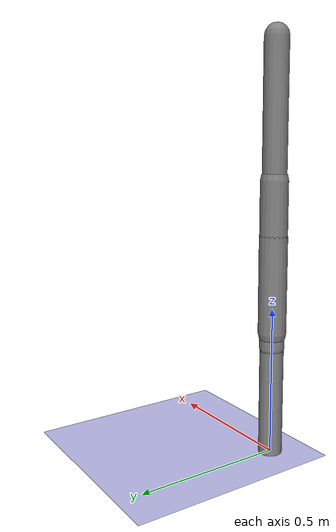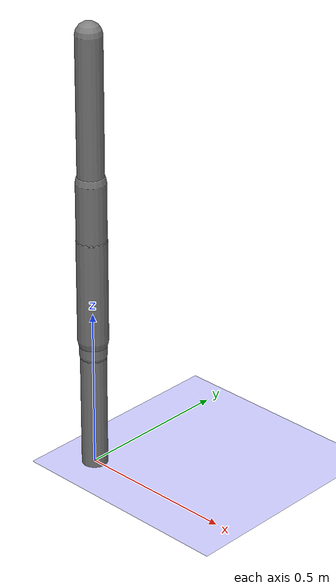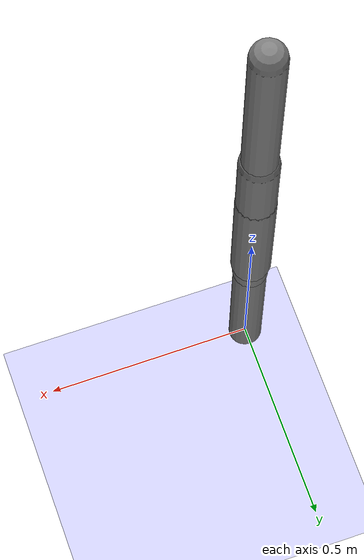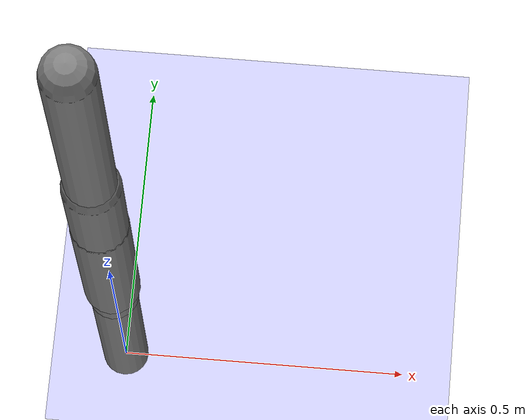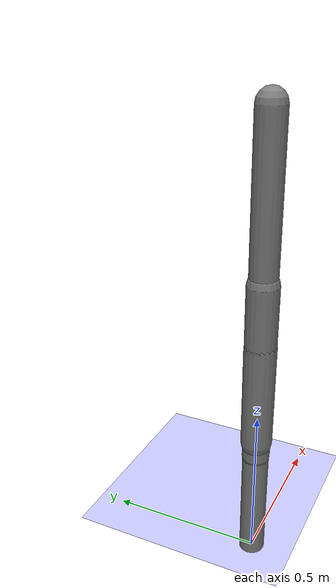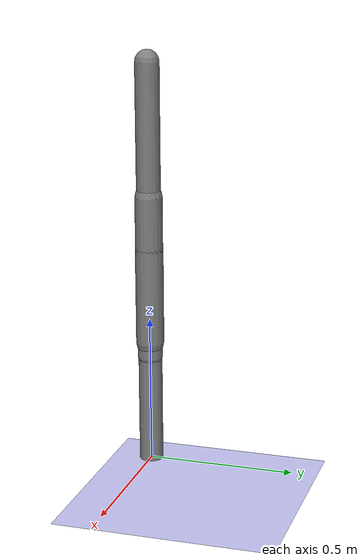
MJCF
<?xml version='1.0' encoding='UTF-8'?>
<mujoco model="robot_model">
  <worldbody>
    <light name="light" pos="0 -3 10" dir="0 0.5 -1" diffuse=".8 .8 .8" specular="0.1 0.1 0.1"/>
    <geom name="floor" type="plane" size="10.0 10.0 0.1" pos="0 0 0" rgba="0.8 0.8 1 1" contype="2" conaffinity="1"/>
    <body name="limb0" pos="0 0 0">
      <geom type="capsule" fromto="0 0 0 0 0 0.54893531554484" size="0.04" density="644.294918913039" contype="1" conaffinity="2"/>
      <site type="sphere" size="0.01" name="limb0_site0" pos="0 0 0.2879800442150526"/>
      <freejoint name="limb0_root"/>
      <body name="limb1" pos="0 0 0.2879800442150526">
        <geom type="capsule" fromto="0 0 0 0 0 0.21116470987763425" size="0.025554145523925077" density="684.7042218773909" contype="1" conaffinity="2"/>
        <site type="sphere" size="0.01" name="limb1_site0" pos="0 0 0.1317462499400262"/>
        <site type="sphere" size="0.01" name="limb1_site1" pos="0 0 0.08084187707904669"/>
        <site type="sphere" size="0.01" name="limb1_site2" pos="0 0 0.21116470987763425"/>
        <body name="limb2" pos="0 0 0.1317462499400262">
          <geom type="capsule" fromto="0 0 0 0 0 0.32331157919001374" size="0.04703069767789839" density="709.8359320414992" contype="1" conaffinity="2"/>
          <joint name="joint_limb1_limb2_0" type="hinge" axis="0 1 0" range="-82.7424809592319 82.7424809592319" damping="5.0"/>
        </body>
        <body name="limb3" pos="0 0 0.08084187707904669">
          <geom type="capsule" fromto="0 0 0 0 0 0.3449366956007403" size="0.04182995516077146" density="888.638751137447" contype="1" conaffinity="2"/>
          <site type="sphere" size="0.01" name="limb3_site0" pos="0 0 0.34476469369601037"/>
          <body name="limb4" pos="0 0 0.34476469369601037">
            <geom type="capsule" fromto="0 0 0 0 0 0.4627724458843048" size="0.038315689202147445" density="598.8324428626668" contype="1" conaffinity="2"/>
            <joint name="joint_limb3_limb4_0" type="hinge" axis="0 1 0" range="-97.60316524447805 97.60316524447805" damping="5.0"/>
          </body>
          <joint name="joint_limb1_limb3_0" type="hinge" axis="1 0 0" range="-76.57739072162552 76.57739072162552" damping="5.0"/>
        </body>
        <body name="limb5" pos="0 0 0.21116470987763425">
          <geom type="capsule" fromto="0 0 0 0 0 0.4727806644286577" size="0.03794159670294999" density="1047.9904850783728" contype="1" conaffinity="2"/>
          <site type="sphere" size="0.01" name="limb5_site0" pos="0 0 0.2278818572451243"/>
          <site type="sphere" size="0.01" name="limb5_site1" pos="0 0 0.416773953600797"/>
          <body name="limb6" pos="0 0 0.2278818572451243">
            <geom type="capsule" fromto="0 0 0 0 0 0.19942307054689806" size="0.04609395862756084" density="1147.4288306062897" contype="1" conaffinity="2"/>
            <joint name="joint_limb5_limb6_0" type="hinge" axis="0 0 1" range="-97.3556228309299 97.3556228309299" damping="5.0"/>
          </body>
          <body name="limb7" pos="0 0 0.416773953600797">
            <geom type="capsule" fromto="0 0 0 0 0 0.4558236432736898" size="0.040393786555888975" density="1054.6511241400187" contype="1" conaffinity="2"/>
            <joint name="joint_limb5_limb7_0" type="hinge" axis="1 0 0" range="-119.76467892017766 119.76467892017766" damping="5.0"/>
          </body>
          <joint name="joint_limb1_limb5_0" type="hinge" axis="0 1 0" range="-106.84257521657214 106.84257521657214" damping="5.0"/>
        </body>
        <joint name="joint_limb0_limb1_0" type="hinge" axis="0 1 0" range="-105.32012538048721 105.32012538048721" damping="5.0"/>
      </body>
    </body>
  </worldbody>
  <actuator>
    <position name="position_actuator_joint_limb0_limb1_0" joint="joint_limb0_limb1_0" gear="0.9772188059097339" inheritrange="1" kp="10.0"/>
    <position name="position_actuator_joint_limb1_limb2_0" joint="joint_limb1_limb2_0" gear="0.7360723872815542" inheritrange="1" kp="10.0"/>
    <position name="position_actuator_joint_limb1_limb3_0" joint="joint_limb1_limb3_0" gear="1.9786544527946286" inheritrange="1" kp="10.0"/>
    <position name="position_actuator_joint_limb3_limb4_0" joint="joint_limb3_limb4_0" gear="1.7459471619076385" inheritrange="1" kp="10.0"/>
    <position name="position_actuator_joint_limb1_limb5_0" joint="joint_limb1_limb5_0" gear="1.4252429185165156" inheritrange="1" kp="10.0"/>
    <position name="position_actuator_joint_limb5_limb6_0" joint="joint_limb5_limb6_0" gear="1.2514069354827302" inheritrange="1" kp="10.0"/>
    <position name="position_actuator_joint_limb5_limb7_0" joint="joint_limb5_limb7_0" gear="1.6376170216743322" inheritrange="1" kp="10.0"/>
  </actuator>
</mujoco>
